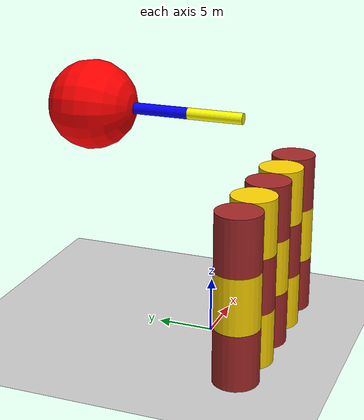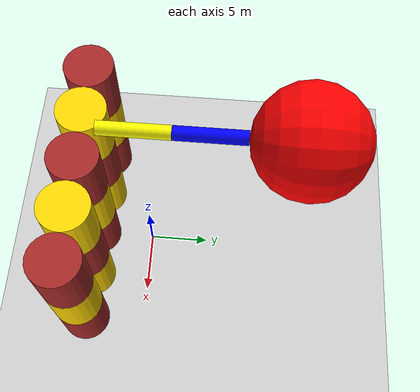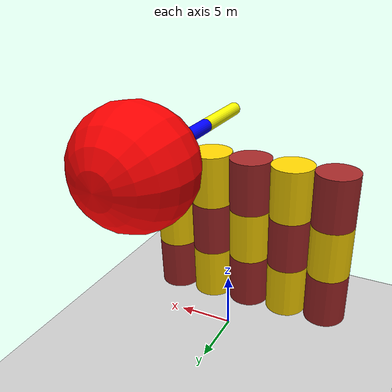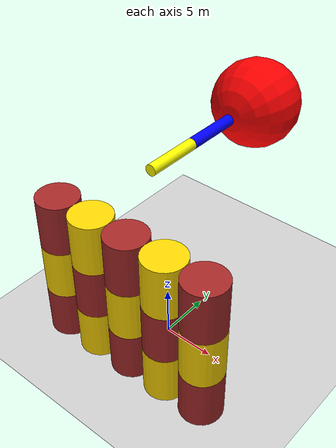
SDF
<?xml version="1.0" ?>
<!--
  Demo of smashing a wall of cylinders with a giant sphere
-->
<sdf version="1.6">
  <world name="wall_smashing">
    <physics name="1ms" type="bullet">
      <max_step_size>0.001</max_step_size>
      <real_time_factor>1.0</real_time_factor>
    </physics>
    <plugin
      filename="libignition-gazebo-physics-system.so"
      name="ignition::gazebo::systems::Physics">
    </plugin>
    <plugin
      filename="libignition-gazebo-user-commands-system.so"
      name="ignition::gazebo::systems::UserCommands">
    </plugin>
    <plugin
      filename="libignition-gazebo-scene-broadcaster-system.so"
      name="ignition::gazebo::systems::SceneBroadcaster">
    </plugin>

    <scene>
      <ambient>1.0 1.0 1.0</ambient>
      <background>0.8 0.8 0.8</background>
    </scene>

    <gui fullscreen="0">

      <!-- 3D scene -->
      <plugin filename="GzScene3D" name="3D View">
        <ignition-gui>
          <title>3D View</title>
          <property type="bool" key="showTitleBar">false</property>
          <property type="string" key="state">docked</property>
        </ignition-gui>

        <engine>ogre2</engine>
        <scene>scene</scene>
        <ambient_light>1.0 1.0 1.0</ambient_light>
        <background_color>0.8 0.8 0.8</background_color>
        <camera_pose>-6 0 6 0 0.5 0</camera_pose>
      </plugin>

      <!-- World control -->
      <plugin filename="WorldControl" name="World control">
        <ignition-gui>
          <title>World control</title>
          <property type="bool" key="showTitleBar">false</property>
          <property type="bool" key="resizable">false</property>
          <property type="double" key="height">72</property>
          <property type="double" key="width">121</property>
          <property type="double" key="z">1</property>

          <property type="string" key="state">floating</property>
          <anchors target="3D View">
            <line own="left" target="left"/>
            <line own="bottom" target="bottom"/>
          </anchors>
        </ignition-gui>

        <play_pause>true</play_pause>
        <step>true</step>
        <start_paused>true</start_paused>
        <service>/world/wall_smashing/control</service>
        <stats_topic>/world/wall_smashing/stats</stats_topic>

      </plugin>

      <!-- World statistics -->
      <plugin filename="WorldStats" name="World stats">
        <ignition-gui>
          <title>World stats</title>
          <property type="bool" key="showTitleBar">false</property>
          <property type="bool" key="resizable">false</property>
          <property type="double" key="height">110</property>
          <property type="double" key="width">290</property>
          <property type="double" key="z">1</property>

          <property type="string" key="state">floating</property>
          <anchors target="3D View">
            <line own="right" target="right"/>
            <line own="bottom" target="bottom"/>
          </anchors>
        </ignition-gui>

        <sim_time>true</sim_time>
        <real_time>true</real_time>
        <real_time_factor>true</real_time_factor>
        <iterations>true</iterations>
        <topic>/world/wall_smashing/stats</topic>

      </plugin>

      <!-- Entity tree -->
      <plugin filename="EntityTree" name="Entity tree">
        <ignition-gui>
          <property type="bool" key="showTitleBar">false</property>
          <property type="string" key="state">docked</property>
        </ignition-gui>
      </plugin>

      <!-- Transform Control -->
      <plugin filename="TransformControl" name="Transform Control">
      </plugin>

    </gui>

    <light type="directional" name="sun">
      <cast_shadows>true</cast_shadows>
      <pose>0 0 10 0 0 0</pose>
      <diffuse>0.8 0.8 0.8 1</diffuse>
      <specular>0.8 0.8 0.8 1</specular>
      <attenuation>
        <range>1000</range>
        <constant>0.9</constant>
        <linear>0.01</linear>
        <quadratic>0.001</quadratic>
      </attenuation>
      <direction>-0.5 0.1 -0.9</direction>
    </light>

    <model name="ground_plane">
      <static>true</static>
      <link name="link">
        <collision name="collision">
          <geometry>
            <plane>
              <normal>0 0 1</normal>
            </plane>
          </geometry>
        </collision>
        <visual name="visual">
          <geometry>
            <plane>
              <normal>0 0 1</normal>
              <size>100 100</size>
            </plane>
          </geometry>
          <material>
            <ambient>0.8 0.8 0.8 1</ambient>
            <diffuse>0.8 0.8 0.8 1</diffuse>
            <specular>0.8 0.8 0.8 1</specular>
          </material>
        </visual>
      </link>
    </model>

    <!-- 1st layer -->
    <model name="cylinder">
      <pose>0 -5 2.5 0 0 0</pose>
      <link name="cylinder_link">
        <inertial>
          <inertia>
            <ixx>2</ixx>
            <ixy>0</ixy>
            <ixz>0</ixz>
            <iyy>2</iyy>
            <iyz>0</iyz>
            <izz>2</izz>
          </inertia>
          <mass>2.0</mass>
        </inertial>
        <collision name="cylinder_collision">
          <geometry>
            <cylinder>
              <radius>1.995</radius>
              <length>5</length>
            </cylinder>
          </geometry>
        </collision>

        <visual name="cylinder_visual">
          <geometry>
            <cylinder>
              <radius>1.995</radius>
              <length>5</length>
            </cylinder>
          </geometry>
          <material>
            <ambient>0.65 0.16 0.16 1</ambient>
            <diffuse>0.65 0.16 0.16 1</diffuse>
            <specular>0.65 0.16 0.16 1</specular>
          </material>
        </visual>
      </link>
    </model>

    <model name="cylinder2">
      <pose>4 -5 2.5 0 0 0</pose>
      <link name="cylinder_link">
        <inertial>
          <inertia>
            <ixx>2</ixx>
            <ixy>0</ixy>
            <ixz>0</ixz>
            <iyy>2</iyy>
            <iyz>0</iyz>
            <izz>2</izz>
          </inertia>
          <mass>2.0</mass>
        </inertial>
        <collision name="cylinder_collision">
          <geometry>
            <cylinder>
              <radius>1.995</radius>
              <length>5</length>
            </cylinder>
          </geometry>
        </collision>

        <visual name="cylinder_visual">
          <geometry>
            <cylinder>
              <radius>1.995</radius>
              <length>5</length>
            </cylinder>
          </geometry>
          <material>
            <ambient>1 0.84 0 1</ambient>
            <diffuse>1 0.84 0 1</diffuse>
            <specular>1 0.84 0 1</specular>
          </material>
        </visual>
      </link>
    </model>

    <model name="cylinder3">
      <pose>-4 -5 2.5 0 0 0</pose>
      <link name="cylinder_link">
        <inertial>
          <inertia>
            <ixx>2</ixx>
            <ixy>0</ixy>
            <ixz>0</ixz>
            <iyy>2</iyy>
            <iyz>0</iyz>
            <izz>2</izz>
          </inertia>
          <mass>2.0</mass>
        </inertial>
        <collision name="cylinder_collision">
          <geometry>
            <cylinder>
              <radius>1.995</radius>
              <length>5</length>
            </cylinder>
          </geometry>
        </collision>

        <visual name="cylinder_visual">
          <geometry>
            <cylinder>
              <radius>1.995</radius>
              <length>5</length>
            </cylinder>
          </geometry>
          <material>
            <ambient>1 0.84 0 1</ambient>
            <diffuse>1 0.84 0 1</diffuse>
            <specular>1 0.84 0 1</specular>
          </material>
        </visual>
      </link>
    </model>

    <model name="cylinder4">
      <pose>8 -5 2.5 0 0 0</pose>
      <link name="cylinder_link">
        <inertial>
          <inertia>
            <ixx>2</ixx>
            <ixy>0</ixy>
            <ixz>0</ixz>
            <iyy>2</iyy>
            <iyz>0</iyz>
            <izz>2</izz>
          </inertia>
          <mass>2.0</mass>
        </inertial>
        <collision name="cylinder_collision">
          <geometry>
            <cylinder>
              <radius>1.995</radius>
              <length>5</length>
            </cylinder>
          </geometry>
        </collision>

        <visual name="cylinder_visual">
          <geometry>
            <cylinder>
              <radius>1.995</radius>
              <length>5</length>
            </cylinder>
          </geometry>
          <material>
            <ambient>0.65 0.16 0.16 1</ambient>
            <diffuse>0.65 0.16 0.16 1</diffuse>
            <specular>0.65 0.16 0.16 1</specular>
          </material>
        </visual>
      </link>
    </model>

    <model name="cylinder5">
      <pose>-8 -5 2.5 0 0 0</pose>
      <link name="cylinder_link">
        <inertial>
          <inertia>
            <ixx>2</ixx>
            <ixy>0</ixy>
            <ixz>0</ixz>
            <iyy>2</iyy>
            <iyz>0</iyz>
            <izz>2</izz>
          </inertia>
          <mass>2.0</mass>
        </inertial>
        <collision name="cylinder_collision">
          <geometry>
            <cylinder>
              <radius>1.995</radius>
              <length>5</length>
            </cylinder>
          </geometry>
        </collision>

        <visual name="cylinder_visual">
          <geometry>
            <cylinder>
              <radius>1.995</radius>
              <length>5</length>
            </cylinder>
          </geometry>
          <material>
            <ambient>0.65 0.16 0.16 1</ambient>
            <diffuse>0.65 0.16 0.16 1</diffuse>
            <specular>0.65 0.16 0.16 1</specular>
          </material>
        </visual>
      </link>
    </model>

    <!-- 2nd layer -->
    <model name="cylinder6">
      <pose>0 -5 7.5 0 0 0</pose>
      <link name="cylinder_link">
        <inertial>
          <inertia>
            <ixx>2</ixx>
            <ixy>0</ixy>
            <ixz>0</ixz>
            <iyy>2</iyy>
            <iyz>0</iyz>
            <izz>2</izz>
          </inertia>
          <mass>2.0</mass>
        </inertial>
        <collision name="cylinder_collision">
          <geometry>
            <cylinder>
              <radius>1.995</radius>
              <length>5</length>
            </cylinder>
          </geometry>
        </collision>

        <visual name="cylinder_visual">
          <geometry>
            <cylinder>
              <radius>1.995</radius>
              <length>5</length>
            </cylinder>
          </geometry>
          <material>
            <ambient>1 0.84 0 1</ambient>
            <diffuse>1 0.84 0 1</diffuse>
            <specular>1 0.84 0 1</specular>
          </material>
        </visual>
      </link>
    </model>

    <model name="cylinder7">
      <pose>4 -5 7.5 0 0 0</pose>
      <link name="cylinder_link">
        <inertial>
          <inertia>
            <ixx>2</ixx>
            <ixy>0</ixy>
            <ixz>0</ixz>
            <iyy>2</iyy>
            <iyz>0</iyz>
            <izz>2</izz>
          </inertia>
          <mass>2.0</mass>
        </inertial>
        <collision name="cylinder_collision">
          <geometry>
            <cylinder>
              <radius>1.995</radius>
              <length>5</length>
            </cylinder>
          </geometry>
        </collision>

        <visual name="cylinder_visual">
          <geometry>
            <cylinder>
              <radius>1.995</radius>
              <length>5</length>
            </cylinder>
          </geometry>
          <material>
            <ambient>0.65 0.16 0.16 1</ambient>
            <diffuse>0.65 0.16 0.16 1</diffuse>
            <specular>0.65 0.16 0.16 1</specular>
          </material>
        </visual>
      </link>
    </model>

    <model name="cylinder8">
      <pose>-4 -5 7.5 0 0 0</pose>
      <link name="cylinder_link">
        <inertial>
          <inertia>
            <ixx>2</ixx>
            <ixy>0</ixy>
            <ixz>0</ixz>
            <iyy>2</iyy>
            <iyz>0</iyz>
            <izz>2</izz>
          </inertia>
          <mass>2.0</mass>
        </inertial>
        <collision name="cylinder_collision">
          <geometry>
            <cylinder>
              <radius>1.995</radius>
              <length>5</length>
            </cylinder>
          </geometry>
        </collision>

        <visual name="cylinder_visual">
          <geometry>
            <cylinder>
              <radius>1.995</radius>
              <length>5</length>
            </cylinder>
          </geometry>
          <material>
            <ambient>0.65 0.16 0.16 1</ambient>
            <diffuse>0.65 0.16 0.16 1</diffuse>
            <specular>0.65 0.16 0.16 1</specular>
          </material>
        </visual>
      </link>
    </model>

    <model name="cylinder9">
      <pose>8 -5 7.5 0 0 0</pose>
      <link name="cylinder_link">
        <inertial>
          <inertia>
            <ixx>2</ixx>
            <ixy>0</ixy>
            <ixz>0</ixz>
            <iyy>2</iyy>
            <iyz>0</iyz>
            <izz>2</izz>
          </inertia>
          <mass>2.0</mass>
        </inertial>
        <collision name="cylinder_collision">
          <geometry>
            <cylinder>
              <radius>1.995</radius>
              <length>5</length>
            </cylinder>
          </geometry>
        </collision>

        <visual name="cylinder_visual">
          <geometry>
            <cylinder>
              <radius>1.995</radius>
              <length>5</length>
            </cylinder>
          </geometry>
          <material>
            <ambient>1 0.84 0 1</ambient>
            <diffuse>1 0.84 0 1</diffuse>
            <specular>1 0.84 0 1</specular>
          </material>
        </visual>
      </link>
    </model>

    <model name="cylinder10">
      <pose>-8 -5 7.5 0 0 0</pose>
      <link name="cylinder_link">
        <inertial>
          <inertia>
            <ixx>2</ixx>
            <ixy>0</ixy>
            <ixz>0</ixz>
            <iyy>2</iyy>
            <iyz>0</iyz>
            <izz>2</izz>
          </inertia>
          <mass>2.0</mass>
        </inertial>
        <collision name="cylinder_collision">
          <geometry>
            <cylinder>
              <radius>1.995</radius>
              <length>5</length>
            </cylinder>
          </geometry>
        </collision>

        <visual name="cylinder_visual">
          <geometry>
            <cylinder>
              <radius>1.995</radius>
              <length>5</length>
            </cylinder>
          </geometry>
          <material>
            <ambient>1 0.84 0 1</ambient>
            <diffuse>1 0.84 0 1</diffuse>
            <specular>1 0.84 0 1</specular>
          </material>
        </visual>
      </link>
    </model>

    <!-- 3rd layer -->
    <model name="cylinder11">
      <pose>0 -5 12.5 0 0 0</pose>
      <link name="cylinder_link">
        <inertial>
          <inertia>
            <ixx>2</ixx>
            <ixy>0</ixy>
            <ixz>0</ixz>
            <iyy>2</iyy>
            <iyz>0</iyz>
            <izz>2</izz>
          </inertia>
          <mass>2.0</mass>
        </inertial>
        <collision name="cylinder_collision">
          <geometry>
            <cylinder>
              <radius>1.995</radius>
              <length>5</length>
            </cylinder>
          </geometry>
        </collision>

        <visual name="cylinder_visual">
          <geometry>
            <cylinder>
              <radius>1.995</radius>
              <length>5</length>
            </cylinder>
          </geometry>
          <material>
            <ambient>0.65 0.16 0.16 1</ambient>
            <diffuse>0.65 0.16 0.16 1</diffuse>
            <specular>0.65 0.16 0.16 1</specular>
          </material>
        </visual>
      </link>
    </model>

    <model name="cylinder12">
      <pose>4 -5 12.5 0 0 0</pose>
      <link name="cylinder_link">
        <inertial>
          <inertia>
            <ixx>2</ixx>
            <ixy>0</ixy>
            <ixz>0</ixz>
            <iyy>2</iyy>
            <iyz>0</iyz>
            <izz>2</izz>
          </inertia>
          <mass>2.0</mass>
        </inertial>
        <collision name="cylinder_collision">
          <geometry>
            <cylinder>
              <radius>1.995</radius>
              <length>5</length>
            </cylinder>
          </geometry>
        </collision>

        <visual name="cylinder_visual">
          <geometry>
            <cylinder>
              <radius>1.995</radius>
              <length>5</length>
            </cylinder>
          </geometry>
          <material>
            <ambient>1 0.84 0 1</ambient>
            <diffuse>1 0.84 0 1</diffuse>
            <specular>1 0.84 0 1</specular>
          </material>
        </visual>
      </link>
    </model>

    <model name="cylinder13">
      <pose>-4 -5 12.5 0 0 0</pose>
      <link name="cylinder_link">
        <inertial>
          <inertia>
            <ixx>2</ixx>
            <ixy>0</ixy>
            <ixz>0</ixz>
            <iyy>2</iyy>
            <iyz>0</iyz>
            <izz>2</izz>
          </inertia>
          <mass>2.0</mass>
        </inertial>
        <collision name="cylinder_collision">
          <geometry>
            <cylinder>
              <radius>1.995</radius>
              <length>5</length>
            </cylinder>
          </geometry>
        </collision>

        <visual name="cylinder_visual">
          <geometry>
            <cylinder>
              <radius>1.995</radius>
              <length>5</length>
            </cylinder>
          </geometry>
          <material>
            <ambient>1 0.84 0 1</ambient>
            <diffuse>1 0.84 0 1</diffuse>
            <specular>1 0.84 0 1</specular>
          </material>
        </visual>
      </link>
    </model>

    <model name="cylinder14">
      <pose>8 -5 12.5 0 0 0</pose>
      <link name="cylinder_link">
        <inertial>
          <inertia>
            <ixx>2</ixx>
            <ixy>0</ixy>
            <ixz>0</ixz>
            <iyy>2</iyy>
            <iyz>0</iyz>
            <izz>2</izz>
          </inertia>
          <mass>2.0</mass>
        </inertial>
        <collision name="cylinder_collision">
          <geometry>
            <cylinder>
              <radius>1.995</radius>
              <length>5</length>
            </cylinder>
          </geometry>
        </collision>

        <visual name="cylinder_visual">
          <geometry>
            <cylinder>
              <radius>1.995</radius>
              <length>5</length>
            </cylinder>
          </geometry>
          <material>
            <ambient>0.65 0.16 0.16 1</ambient>
            <diffuse>0.65 0.16 0.16 1</diffuse>
            <specular>0.65 0.16 0.16 1</specular>
          </material>
        </visual>
      </link>
    </model>

    <model name="cylinder15">
      <pose>-8 -5 12.5 0 0 0</pose>
      <link name="cylinder_link">
        <inertial>
          <inertia>
            <ixx>2</ixx>
            <ixy>0</ixy>
            <ixz>0</ixz>
            <iyy>2</iyy>
            <iyz>0</iyz>
            <izz>2</izz>
          </inertia>
          <mass>2.0</mass>
        </inertial>
        <collision name="cylinder_collision">
          <geometry>
            <cylinder>
              <radius>1.995</radius>
              <length>5</length>
            </cylinder>
          </geometry>
        </collision>

        <visual name="cylinder_visual">
          <geometry>
            <cylinder>
              <radius>1.995</radius>
              <length>5</length>
            </cylinder>
          </geometry>
          <material>
            <ambient>0.65 0.16 0.16 1</ambient>
            <diffuse>0.65 0.16 0.16 1</diffuse>
            <specular>0.65 0.16 0.16 1</specular>
          </material>
        </visual>
      </link>
    </model>

    <model name="pendulum">
      <pose>0.5 0 20 1.57 0 0</pose>
      <link name="link">
        <inertial>
          <inertia>
            <ixx>1</ixx>
            <ixy>0</ixy>
            <ixz>0</ixz>
            <iyy>1</iyy>
            <iyz>0</iyz>
            <izz>1</izz>
          </inertia>
          <mass>2.0</mass>
        </inertial>
        <collision name="collision">
          <geometry>
            <cylinder>
              <radius>0.5</radius>
              <length>5</length>
            </cylinder>
          </geometry>
        </collision>

        <visual name="visual">
          <geometry>
            <cylinder>
              <radius>0.5</radius>
              <length>5</length>
            </cylinder>
          </geometry>
          <material>
            <ambient>1 1 0 1</ambient>
            <diffuse>1 1 0 1</diffuse>
            <specular>1 1 0 1</specular>
          </material>
        </visual>
      </link>

      <joint name="world_joint" type="revolute">
        <pose>0 0 2.5 0 0 0</pose>
        <parent>world</parent>
        <child>link</child>
        <axis>
          <xyz>1 0 0</xyz>
        </axis>
      </joint>

      <link name="link2">
        <pose>0 0 -5 0 0 0</pose>
        <inertial>
          <inertia>
            <ixx>1</ixx>
            <ixy>0</ixy>
            <ixz>0</ixz>
            <iyy>1</iyy>
            <iyz>0</iyz>
            <izz>1</izz>
          </inertia>
          <mass>2.0</mass>
        </inertial>
        <collision name="collision">
          <geometry>
            <cylinder>
              <radius>0.5</radius>
              <length>5</length>
            </cylinder>
          </geometry>
        </collision>

        <visual name="visual">
          <geometry>
            <cylinder>
              <radius>0.5</radius>
              <length>5</length>
            </cylinder>
          </geometry>
          <material>
            <ambient>0 0 1 1</ambient>
            <diffuse>0 0 1 1</diffuse>
            <specular>0 0 1 1</specular>
          </material>
        </visual>
      </link>

      <joint name="joint2" type="revolute">
        <pose>0 0 2.5 0 0 0</pose>
        <parent>link</parent>
        <child>link2</child>
        <axis>
          <xyz>1 0 0</xyz>
        </axis>
      </joint>

      <link name="link3">
        <pose>0 0 -11.5 0 0 0</pose>
        <inertial>
          <inertia>
            <ixx>1</ixx>
            <ixy>0</ixy>
            <ixz>0</ixz>
            <iyy>1</iyy>
            <iyz>0</iyz>
            <izz>1</izz>
          </inertia>
          <mass>100.0</mass>
        </inertial>
        <collision name="collision">
          <geometry>
            <sphere>
              <radius>4</radius>
            </sphere>
          </geometry>
        </collision>

        <visual name="visual">
          <geometry>
            <sphere>
              <radius>4</radius>
            </sphere>
          </geometry>
          <material>
            <ambient>1 0 0 1</ambient>
            <diffuse>1 0 0 1</diffuse>
            <specular>1 0 0 1</specular>
          </material>
        </visual>
      </link>

      <joint name="joint3" type="fixed">
        <pose>0 0 4 0 0 0</pose>
        <parent>link2</parent>
        <child>link3</child>
      </joint>
    </model>

  </world>
</sdf>
